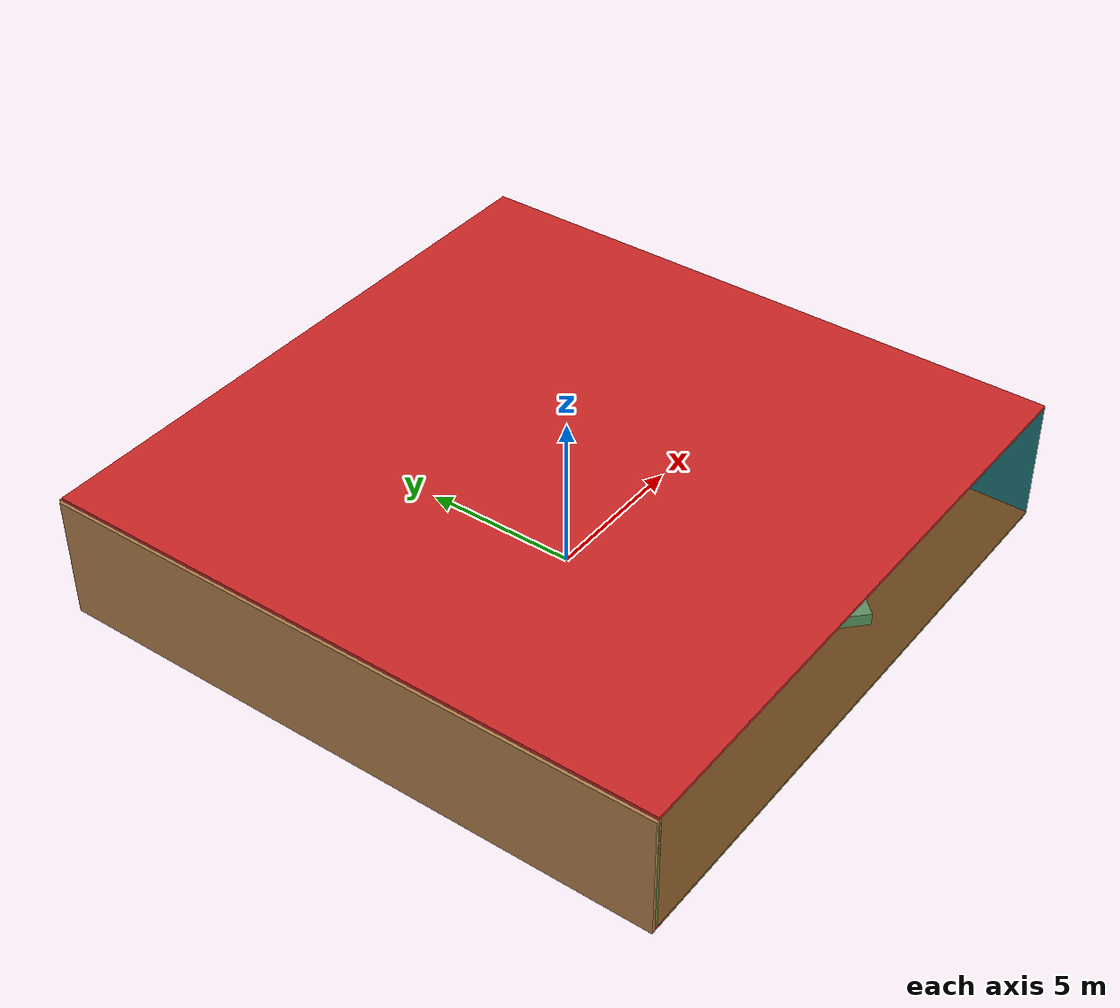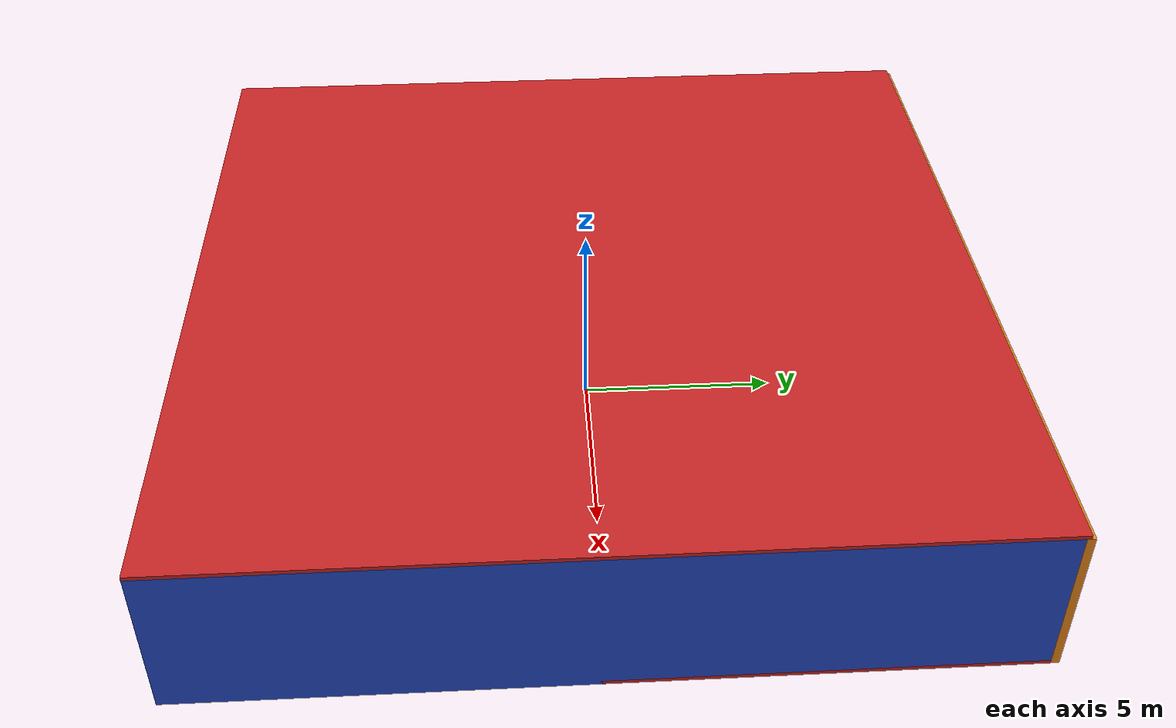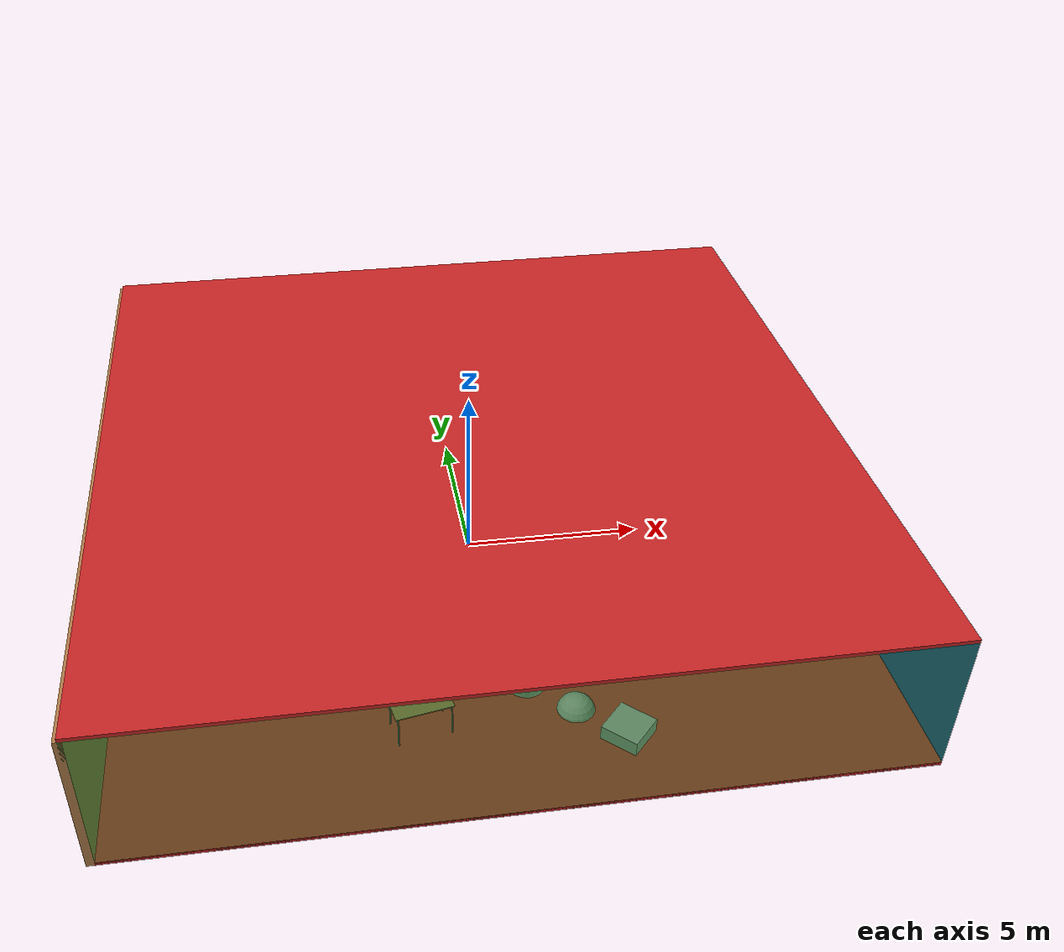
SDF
<sdf version="1.4">
 <world name="default">
  <physics type="ode">
   <max_step_size>0.001</max_step_size>
   <real_time_factor>1</real_time_factor>
   <real_time_update_rate>1000</real_time_update_rate>
   <gravity>0 0 -9.8</gravity>
  </physics>
  <scene><ambient>0.4 0.4 0.4 1</ambient><background>0.7 0.7 0.7 1</background><shadows>1</shadows></scene>
  <model name="Surrounding">
   <static>1</static>
   <link name="Ceiling">
    <collision name="Ceiling_Collision"><geometry><box><size>20 20 0.1</size></box></geometry></collision>
    <visual name="Ceiling_Visual">
     <geometry><box><size>20 20 0.1</size></box></geometry>
     <material>
      <script><uri>file://media/materials/scripts/gazebo.material</uri><name>Gazebo/RedGlow</name></script>
     </material>
    </visual>
    <pose>0 0 4.05 0 0 0</pose>
   </link>
   <link name="Wall_South">
    <collision name="Wall_South_Collision">
     <geometry><box><size>20 0 4</size></box></geometry>
     <pose>0 0 2 0 -0 0</pose>
    </collision>
    <visual name="Wall_South_Visual">
     <pose>0 0 2 0 -0 0</pose>
     <geometry><box><size>20 0 4</size></box></geometry>
     <material>
      <script><uri>file://media/materials/scripts/gazebo.material</uri><name>Gazebo/GreenTransparent</name></script>
     </material>
    </visual>
    <velocity_decay><linear>0</linear><angular>0</angular></velocity_decay>
    <pose>0 -10 0 0 -0 0</pose>
   </link>
   <link name="Wall_East">
    <collision name="Wall_21_Collision">
     <geometry><box><size>20 0 4</size></box></geometry>
     <pose>0 0 2 0 -0 0</pose>
    </collision>
    <visual name="Wall_21_Visual">
     <pose>0 0 2 0 -0 0</pose>
     <geometry><box><size>20 0 4</size></box></geometry>
     <material>
      <script><uri>file://media/materials/scripts/gazebo.material</uri><name>Gazebo/BlueLaser</name></script>
     </material>
    </visual>
    <velocity_decay><linear>0</linear><angular>0</angular></velocity_decay>
    <pose>10 0 0 0 -0 1.5708</pose>
   </link>
   <link name="Wall_North">
    <collision name="Wall_22_Collision">
     <geometry><box><size>20 0.2 4</size></box></geometry>
     <pose>0 0 2 0 -0 0</pose>
    </collision>
    <visual name="Wall_22_Visual">
     <pose>0 0 2 0 -0 0</pose>
     <geometry><box><size>20 0.2 4</size></box></geometry>
     <material>
      <script><uri>file://media/materials/scripts/gazebo.material</uri><name>Gazebo/Orange</name></script>
     </material>
    </visual>
    <velocity_decay><linear>0</linear><angular>0</angular></velocity_decay>
    <pose>0 10 0 0 -0 0</pose>
   </link>
   <link name="Wall_West">
    <collision name="Wall_23_Collision">
     <geometry><box><size>20 0.2 4</size></box></geometry>
     <pose>0 0 2 0 -0 0</pose>
    </collision>
    <visual name="Wall_23_Visual">
     <pose>0 0 2 0 -0 0</pose>
     <geometry><box><size>20 0.2 4</size></box></geometry>
     <material>
      <script><uri>file://media/materials/scripts/gazebo.material</uri><name>Gazebo/WoodPallet</name></script>
     </material>
    </visual>
    <velocity_decay><linear>0</linear><angular>0</angular></velocity_decay>
    <pose>-10 0 0 0 0 -1.5708</pose>
   </link>
   <link name="Ground_link">
    <collision name="collision">
     <pose>0 0 .05 0 -0 0</pose>
     <geometry><box><size>20 20 0.1</size></box></geometry>
    </collision>
    <visual name="visual">
     <pose>0 0 .05 0 -0 0</pose>
     <geometry><box><size>20 20 0.1</size></box></geometry>
     <material>
      <script><uri>file://media/materials/scripts/gazebo.material</uri><name>Gazebo/RedBright</name></script>
     </material>
    </visual>
   </link>
   <static>1</static>
  </model>
  <spherical_coordinates>
   <surface_model>EARTH_WGS84</surface_model>
   <latitude_deg>0</latitude_deg>
   <longitude_deg>0</longitude_deg>
   <elevation>0</elevation>
   <heading_deg>0</heading_deg>
  </spherical_coordinates>
  <light name="lightball_0" type="diffuse">
   <diffuse>0.8 0.8 0.8 1</diffuse>
   <specular>0.2 0.2 0.2 1</specular>
   <attenuation>
    <range>100</range>
    <constant>0.7</constant>
    <linear>0.01</linear>
    <quadratic>0.001</quadratic>
   </attenuation>
   <direction>-0.5 0.1 -0.9</direction>
   <pose>-5.93615117104 0.911324341112 3.53038842405 0 0 0</pose>
  </light>
  <include><uri>model://table</uri><pose>-4.18338414398 0.97133727874 0 0 0 1.68046283978</pose></include>
  <include><uri>model://cabinet</uri><pose>-5.15439350781 8.0643892573 0 0 0 1.27989314373</pose></include>
  <include><uri>model://table</uri><pose>-2.25011393977 -7.07188448882 0 0 0 0.181819011016</pose></include>
  <include>
   <uri>model://textured_shapes</uri>
   <pose>1.6712448401 -6.99524567552 0 0 0 0.807426992124</pose>
  </include>
  <include><uri>model://cabinet</uri><pose>1.26700994724 -4.41549767787 0 0 0 0.739114930936</pose></include>
  <include>
   <uri>model://construction_cone</uri>
   <pose>1.7326250304 1.29092550357 0 0 0 0.660416165842</pose>
  </include>
  <include><uri>model://cabinet</uri><pose>6.96017621905 -4.431668461 0 0 0 2.50522894023</pose></include>
  <include><uri>model://cabinet</uri><pose>7.19766068502 6.90494492145 0 0 0 2.10211616459</pose></include>
 </world>
</sdf>

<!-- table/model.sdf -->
<sdf version="1.5">
  <model name="table">
    <static>true</static>
    <link name="link">
      <collision name="surface">
        <pose>0 0 1.0 0 0 0</pose>
        <geometry>
          <box>
            <size>1.5 0.8 0.03</size>
          </box>
        </geometry>
        <surface>
          <friction>
            <ode>
              <mu>0.6</mu>
              <mu2>0.6</mu2>
            </ode>
          </friction>
        </surface>
      </collision>
      <visual name="visual1">
        <pose>0 0 1.0 0 0 0</pose>
        <geometry>
          <box>
            <size>1.5 0.8 0.03</size>
          </box>
        </geometry>
        <material>
          <script>
            <uri>model://media/materials/scripts/gazebo.material</uri>
            <name>Gazebo/Wood</name>
          </script>
        </material>
      </visual>
      <collision name="front_left_leg">
        <pose>0.68 0.38 0.5 0 0 0</pose>
        <geometry>
          <cylinder>
            <radius>0.02</radius>
            <length>1.0</length>
          </cylinder>
        </geometry>
      </collision>
      <visual name="front_left_leg">
        <pose>0.68 0.38 0.5 0 0 0</pose>
        <geometry>
          <cylinder>
            <radius>0.02</radius>
            <length>1.0</length>
          </cylinder>
        </geometry>
        <material>
          <script>
            <uri>model://media/materials/scripts/gazebo.material</uri>
            <name>Gazebo/Grey</name>
          </script>
        </material>
      </visual>
      <collision name="front_right_leg">
        <pose>0.68 -0.38 0.5 0 0 0</pose>
        <geometry>
          <cylinder>
            <radius>0.02</radius>
            <length>1.0</length>
          </cylinder>
        </geometry>
      </collision>
      <visual name="front_right_leg">
        <pose>0.68 -0.38 0.5 0 0 0</pose>
        <geometry>
          <cylinder>
            <radius>0.02</radius>
            <length>1.0</length>
          </cylinder>
        </geometry>
        <material>
          <script>
            <uri>model://media/materials/scripts/gazebo.material</uri>
            <name>Gazebo/Grey</name>
          </script>
        </material>
      </visual>
      <collision name="back_right_leg">
        <pose>-0.68 -0.38 0.5 0 0 0</pose>
        <geometry>
          <cylinder>
            <radius>0.02</radius>
            <length>1.0</length>
          </cylinder>
        </geometry>
      </collision>
      <visual name="back_right_leg">
        <pose>-0.68 -0.38 0.5 0 0 0</pose>
        <geometry>
          <cylinder>
            <radius>0.02</radius>
            <length>1.0</length>
          </cylinder>
        </geometry>
        <material>
          <script>
            <uri>model://media/materials/scripts/gazebo.material</uri>
            <name>Gazebo/Grey</name>
          </script>
        </material>
      </visual>
      <collision name="back_left_leg">
        <pose>-0.68 0.38 0.5 0 0 0</pose>
        <geometry>
          <cylinder>
            <radius>0.02</radius>
            <length>1.0</length>
          </cylinder>
        </geometry>
      </collision>
      <visual name="back_left_leg">
        <pose>-0.68 0.38 0.5 0 0 0</pose>
        <geometry>
          <cylinder>
            <radius>0.02</radius>
            <length>1.0</length>
          </cylinder>
        </geometry>
        <material>
          <script>
            <uri>model://media/materials/scripts/gazebo.material</uri>
            <name>Gazebo/Grey</name>
          </script>
        </material>
      </visual>
    </link>
  </model>
</sdf>

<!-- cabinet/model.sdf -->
<sdf version="1.5">
  <model name="cabinet">
    <static>true</static>
    <link name="cabinet_bottom_plate">
      <inertial>
        <pose>0 0 -1 0 0 0</pose>
        <inertia>
          <ixx>2.050000</ixx>
          <ixy>0</ixy>
          <ixz>0</ixz>
          <iyy>2.050000</iyy>
          <iyz>0</iyz>
          <izz>2.050000</izz>
        </inertia>
        <mass>25.000000</mass>
      </inertial>
      <collision name="cabinet_bottom_plate_geom">
        <pose>0 0 0.010000 0 0 0</pose>
        <geometry>
          <box>
            <size>0.450000 0.450000 0.020000</size>
          </box>
        </geometry>
      </collision>
      <visual name="cabinet_bottom_plate_geom_visual">
        <pose>0 0 0.010000 0 0 0</pose>
        <geometry>
          <box>
            <size>0.450000 0.450000 0.020000</size>
          </box>
        </geometry>
        <material>
          <script>
            <uri>model://media/materials/scripts/gazebo.material</uri>
            <name>Gazebo/Wood</name>
          </script>
        </material>
      </visual>
      <collision name="cabinet_bottom_plate_geom_cabinet_back_plate">
        <pose>0.235000 0 0.510000 0 0 0</pose>
        <geometry>
          <box>
            <size>0.020000 0.450000 1.020000</size>
          </box>
        </geometry>
      </collision>
      <visual name="cabinet_bottom_plate_geom_cabinet_back_plate_visual">
        <pose>0.235000 0 0.510000 0 0 0</pose>
        <geometry>
          <box>
            <size>0.020000 0.450000 1.020000</size>
          </box>
        </geometry>
        <material>
          <script>
            <uri>model://media/materials/scripts/gazebo.material</uri>
            <name>Gazebo/Wood</name>
          </script>
        </material>
      </visual>
      <collision name="cabinet_bottom_plate_geom_cabinet_left_plate">
        <pose>0 0.235000 0.510000 0 0 0</pose>
        <geometry>
          <box>
            <size>0.450000 0.020000 1.020000</size>
          </box>
        </geometry>
      </collision>
      <visual name="cabinet_bottom_plate_geom_cabinet_left_plate_visual">
        <pose>0 0.235000 0.510000 0 0 0</pose>
        <geometry>
          <box>
            <size>0.450000 0.020000 1.020000</size>
          </box>
        </geometry>
        <material>
          <script>
            <uri>model://media/materials/scripts/gazebo.material</uri>
            <name>Gazebo/Wood</name>
          </script>
        </material>
      </visual>
      <collision name="cabinet_bottom_plate_geom_cabinet_middle_plate">
        <pose>0 0 0.510000 0 0 0</pose>
        <geometry>
          <box>
            <size>0.450000 0.450000 0.020000</size>
          </box>
        </geometry>
      </collision>
      <visual name="cabinet_bottom_plate_geom_cabinet_middle_plate_visual">
        <pose>0 0 0.510000 0 0 0</pose>
        <geometry>
          <box>
            <size>0.450000 0.450000 0.020000</size>
          </box>
        </geometry>
        <material>
          <script>
            <uri>model://media/materials/scripts/gazebo.material</uri>
            <name>Gazebo/Wood</name>
          </script>
        </material>
      </visual>
      <collision name="cabinet_bottom_plate_geom_cabinet_right_plate">
        <pose>0 -0.235000 0.510000 0 0 0</pose>
        <geometry>
          <box>
            <size>0.450000 0.020000 1.020000</size>
          </box>
        </geometry>
      </collision>
      <visual name="cabinet_bottom_plate_geom_cabinet_right_plate_visual">
        <pose>0 -0.235000 0.510000 0 0 0</pose>
        <geometry>
          <box>
            <size>0.450000 0.020000 1.020000</size>
          </box>
        </geometry>
        <material>
          <script>
            <uri>model://media/materials/scripts/gazebo.material</uri>
            <name>Gazebo/Wood</name>
          </script>
        </material>
      </visual>
      <collision name="cabinet_bottom_plate_geom_cabinet_top_plate">
        <pose>0 0 1.010000 0 0 0</pose>
        <geometry>
          <box>
            <size>0.450000 0.450000 0.020000</size>
          </box>
        </geometry>
      </collision>
      <visual name="cabinet_bottom_plate_geom_cabinet_top_plate_visual">
        <pose>0 0 1.010000 0 0 0</pose>
        <geometry>
          <box>
            <size>0.450000 0.450000 0.020000</size>
          </box>
        </geometry>
        <material>
          <script>
            <uri>model://media/materials/scripts/gazebo.material</uri>
            <name>Gazebo/Wood</name>
          </script>
        </material>
      </visual>
    </link>
  </model>
</sdf>

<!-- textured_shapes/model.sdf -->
<sdf version="1.6">
  <model name="textured_shapes">
    <pose>0 0 0.5 0 0 0</pose>
    <link name="box">
      <pose>0 -1.5 0 0 0 0</pose>
      <collision name="collision">
        <geometry>
          <box>
            <size>1 1 1</size>
          </box>
        </geometry>
      </collision>
      <visual name="visual">
        <geometry>
          <box>
            <size>1 1 1</size>
          </box>
        </geometry>
        <material>
          <script>
            <uri>model://../model_source/models/textured_shapes/materials/scripts</uri>
            <uri>model://../model_source/models/textured_shapes/materials/textures</uri>
            <name>TexturedShape/Squares</name>
          </script>
        </material>
      </visual>
    </link>
    <link name="sphere">
      <collision name="collision">
        <geometry>
          <sphere>
            <radius>0.5</radius>
          </sphere>
        </geometry>
      </collision>
      <visual name="visual">
        <geometry>
          <sphere>
            <radius>0.5</radius>
          </sphere>
        </geometry>
        <material>
          <script>
            <uri>model://../model_source/models/textured_shapes/materials/scripts</uri>
            <uri>model://../model_source/models/textured_shapes/materials/textures</uri>
            <name>TexturedShape/Squares</name>
          </script>
        </material>
      </visual>
    </link>
    <link name="cylinder">
      <pose>0 1.5 0 0 0 0</pose>
      <collision name="collision">
        <geometry>
          <cylinder>
            <radius>0.5</radius>
            <length>1</length>
          </cylinder>
        </geometry>
      </collision>
      <visual name="visual">
        <geometry>
          <cylinder>
            <radius>0.5</radius>
            <length>1</length>
          </cylinder>
        </geometry>
        <material>
          <script>
            <uri>model://../model_source/models/textured_shapes/materials/scripts</uri>
            <uri>model://../model_source/models/textured_shapes/materials/textures</uri>
            <name>TexturedShape/Squares</name>
          </script>
        </material>
      </visual>
    </link>
  </model>
</sdf>

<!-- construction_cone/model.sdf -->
<sdf version="1.5">
  <model name="Construction Cone">
    <link name="link">
      <collision name="collision">
        <geometry>
          <mesh>
            <scale>10 10 10</scale>
            <uri>file://isr-testbed/construction_cone/meshes/construction_cone.dae</uri>
          </mesh>
        </geometry>
      </collision>
      <visual name="visual">
        <geometry>
          <mesh>
            <scale>10 10 10</scale>
            <uri>file://isr-testbed/construction_cone/meshes/construction_cone.dae</uri>
          </mesh>
        </geometry>
      </visual>
    </link>
  </model>
</sdf>
